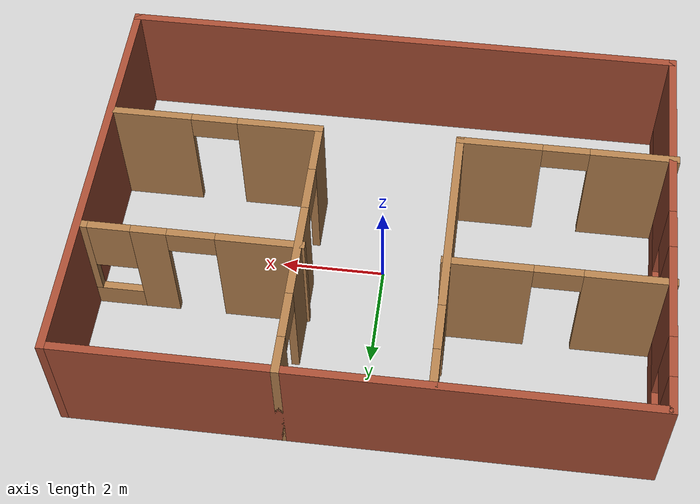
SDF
<sdf version="1.7">
 <world name="default">
  <model name="ground_plane">
   <static>1</static>
   <link name="link">
    <collision name="collision">
     <geometry><plane><normal>0 0 1</normal><size>100 100</size></plane></geometry>
     <surface>
      <contact><collide_bitmask>65535</collide_bitmask></contact>
      <friction><ode><mu>100</mu><mu2>50</mu2></ode></friction>
     </surface>
    </collision>
    <visual name="visual">
     <cast_shadows>0</cast_shadows>
     <geometry><plane><normal>0 0 1</normal><size>100 100</size></plane></geometry>
     <material>
      <script><uri>file://media/materials/scripts/gazebo.material</uri><name>Gazebo/Grey</name></script>
     </material>
    </visual>
   </link>
  </model>
  <model name="building">
   <pose>0.055018 -0.119873 0 0 -0 0</pose>
   <link name="Wall_0">
    <pose>-5.39568 -0 0 0 -0 -1.5708</pose>
    <visual name="Wall_0_Visual_0">
     <pose>-3.6378 0 1.25 0 -0 0</pose>
     <geometry><box><size>0.724404 0.15 2.5</size></box></geometry>
     <material>
      <script><uri>file://media/materials/scripts/gazebo.material</uri><name>Gazebo/Bricks</name></script>
      <ambient>1 1 1 1</ambient>
     </material>
     <meta><layer>0</layer></meta>
    </visual>
    <collision name="Wall_0_Collision_0">
     <geometry><box><size>0.724404 0.15 2.5</size></box></geometry>
     <pose>-3.6378 0 1.25 0 -0 0</pose>
    </collision>
    <visual name="Wall_0_Visual_1">
     <pose>0.362202 0 0.25 0 -0 0</pose>
     <geometry><box><size>7.2756 0.15 0.5</size></box></geometry>
     <material>
      <script><uri>file://media/materials/scripts/gazebo.material</uri><name>Gazebo/Bricks</name></script>
      <ambient>1 1 1 1</ambient>
     </material>
     <meta><layer>0</layer></meta>
    </visual>
    <collision name="Wall_0_Collision_1">
     <geometry><box><size>7.2756 0.15 0.5</size></box></geometry>
     <pose>0.362202 0 0.25 0 -0 0</pose>
    </collision>
    <visual name="Wall_0_Visual_2">
     <pose>-1.52012 0 1.5 0 -0 0</pose>
     <geometry><box><size>1.91096 0.15 2</size></box></geometry>
     <material>
      <script><uri>file://media/materials/scripts/gazebo.material</uri><name>Gazebo/Bricks</name></script>
      <ambient>1 1 1 1</ambient>
     </material>
     <meta><layer>0</layer></meta>
    </visual>
    <collision name="Wall_0_Collision_2">
     <geometry><box><size>1.91096 0.15 2</size></box></geometry>
     <pose>-1.52012 0 1.5 0 -0 0</pose>
    </collision>
    <visual name="Wall_0_Visual_3">
     <pose>2.11768 0 1.5 0 -0 0</pose>
     <geometry><box><size>3.76464 0.15 2</size></box></geometry>
     <material>
      <script><uri>file://media/materials/scripts/gazebo.material</uri><name>Gazebo/Bricks</name></script>
      <ambient>1 1 1 1</ambient>
     </material>
     <meta><layer>0</layer></meta>
    </visual>
    <collision name="Wall_0_Collision_3">
     <geometry><box><size>3.76464 0.15 2</size></box></geometry>
     <pose>2.11768 0 1.5 0 -0 0</pose>
    </collision>
    <visual name="Wall_0_Visual_4">
     <pose>-2.8756 0 1.9 0 -0 0</pose>
     <geometry><box><size>0.8 0.15 1.2</size></box></geometry>
     <material>
      <script><uri>file://media/materials/scripts/gazebo.material</uri><name>Gazebo/Bricks</name></script>
      <ambient>1 1 1 1</ambient>
     </material>
     <meta><layer>0</layer></meta>
    </visual>
    <collision name="Wall_0_Collision_4">
     <geometry><box><size>0.8 0.15 1.2</size></box></geometry>
     <pose>-2.8756 0 1.9 0 -0 0</pose>
    </collision>
    <visual name="Wall_0_Visual_5">
     <pose>-0.164637 0 1.9 0 -0 0</pose>
     <geometry><box><size>0.8 0.15 1.2</size></box></geometry>
     <material>
      <script><uri>file://media/materials/scripts/gazebo.material</uri><name>Gazebo/Bricks</name></script>
      <ambient>1 1 1 1</ambient>
     </material>
     <meta><layer>0</layer></meta>
    </visual>
    <collision name="Wall_0_Collision_5">
     <geometry><box><size>0.8 0.15 1.2</size></box></geometry>
     <pose>-0.164637 0 1.9 0 -0 0</pose>
    </collision>
   </link>
   <link name="Wall_1">
    <collision name="Wall_1_Collision">
     <geometry><box><size>11 0.15 2.5</size></box></geometry>
     <pose>0 0 1.25 0 -0 0</pose>
    </collision>
    <visual name="Wall_1_Visual">
     <pose>0 0 1.25 0 -0 0</pose>
     <geometry><box><size>11 0.15 2.5</size></box></geometry>
     <material>
      <script><uri>file://media/materials/scripts/gazebo.material</uri><name>Gazebo/Bricks</name></script>
      <ambient>1 1 1 1</ambient>
     </material>
     <meta><layer>0</layer></meta>
    </visual>
    <pose>0.029316 -3.925 0 0 -0 0</pose>
   </link>
   <link name="Wall_10">
    <pose>-3.40548 -1.45998 0 0 -0 3.14159</pose>
    <visual name="Wall_10_Visual_0">
     <pose>-1.29808 0 1.25 0 -0 0</pose>
     <geometry><box><size>1.65385 0.15 2.5</size></box></geometry>
     <material>
      <script><uri>file://media/materials/scripts/gazebo.material</uri><name>Gazebo/Wood</name></script>
      <ambient>1 1 1 1</ambient>
     </material>
     <meta><layer>0</layer></meta>
    </visual>
    <collision name="Wall_10_Collision_0">
     <geometry><box><size>1.65385 0.15 2.5</size></box></geometry>
     <pose>-1.29808 0 1.25 0 -0 0</pose>
    </collision>
    <visual name="Wall_10_Visual_1">
     <pose>1.27692 0 1.25 0 -0 0</pose>
     <geometry><box><size>1.69615 0.15 2.5</size></box></geometry>
     <material>
      <script><uri>file://media/materials/scripts/gazebo.material</uri><name>Gazebo/Wood</name></script>
      <ambient>1 1 1 1</ambient>
     </material>
     <meta><layer>0</layer></meta>
    </visual>
    <collision name="Wall_10_Collision_1">
     <geometry><box><size>1.69615 0.15 2.5</size></box></geometry>
     <pose>1.27692 0 1.25 0 -0 0</pose>
    </collision>
    <visual name="Wall_10_Visual_2">
     <pose>-0.021153 0 2.25 0 -0 0</pose>
     <geometry><box><size>0.9 0.15 0.5</size></box></geometry>
     <material>
      <script><uri>file://media/materials/scripts/gazebo.material</uri><name>Gazebo/Wood</name></script>
      <ambient>1 1 1 1</ambient>
     </material>
     <meta><layer>0</layer></meta>
    </visual>
    <collision name="Wall_10_Collision_2">
     <geometry><box><size>0.9 0.15 0.5</size></box></geometry>
     <pose>-0.021153 0 2.25 0 -0 0</pose>
    </collision>
   </link>
   <link name="Wall_12">
    <pose>3.35301 1.31898 0 0 -0 0</pose>
    <visual name="Wall_12_Visual_0">
     <pose>-1.29808 0 1.25 0 -0 0</pose>
     <geometry><box><size>1.65385 0.15 2.5</size></box></geometry>
     <material>
      <script><uri>file://media/materials/scripts/gazebo.material</uri><name>Gazebo/Wood</name></script>
      <ambient>1 1 1 1</ambient>
     </material>
     <meta><layer>0</layer></meta>
    </visual>
    <collision name="Wall_12_Collision_0">
     <geometry><box><size>1.65385 0.15 2.5</size></box></geometry>
     <pose>-1.29808 0 1.25 0 -0 0</pose>
    </collision>
    <visual name="Wall_12_Visual_1">
     <pose>0.764665 0 1.25 0 -0 0</pose>
     <geometry><box><size>0.671635 0.15 2.5</size></box></geometry>
     <material>
      <script><uri>file://media/materials/scripts/gazebo.material</uri><name>Gazebo/Wood</name></script>
      <ambient>1 1 1 1</ambient>
     </material>
     <meta><layer>0</layer></meta>
    </visual>
    <collision name="Wall_12_Collision_1">
     <geometry><box><size>0.671635 0.15 2.5</size></box></geometry>
     <pose>0.764665 0 1.25 0 -0 0</pose>
    </collision>
    <visual name="Wall_12_Visual_2">
     <pose>1.61274 0 0.25 0 -0 0</pose>
     <geometry><box><size>1.02452 0.15 0.5</size></box></geometry>
     <material>
      <script><uri>file://media/materials/scripts/gazebo.material</uri><name>Gazebo/Wood</name></script>
      <ambient>1 1 1 1</ambient>
     </material>
     <meta><layer>0</layer></meta>
    </visual>
    <collision name="Wall_12_Collision_2">
     <geometry><box><size>1.02452 0.15 0.5</size></box></geometry>
     <pose>1.61274 0 0.25 0 -0 0</pose>
    </collision>
    <visual name="Wall_12_Visual_3">
     <pose>2.01274 0 1.5 0 -0 0</pose>
     <geometry><box><size>0.224517 0.15 2</size></box></geometry>
     <material>
      <script><uri>file://media/materials/scripts/gazebo.material</uri><name>Gazebo/Wood</name></script>
      <ambient>1 1 1 1</ambient>
     </material>
     <meta><layer>0</layer></meta>
    </visual>
    <collision name="Wall_12_Collision_3">
     <geometry><box><size>0.224517 0.15 2</size></box></geometry>
     <pose>2.01274 0 1.5 0 -0 0</pose>
    </collision>
    <visual name="Wall_12_Visual_4">
     <pose>1.50048 0 1.9 0 -0 0</pose>
     <geometry><box><size>0.8 0.15 1.2</size></box></geometry>
     <material>
      <script><uri>file://media/materials/scripts/gazebo.material</uri><name>Gazebo/Wood</name></script>
      <ambient>1 1 1 1</ambient>
     </material>
     <meta><layer>0</layer></meta>
    </visual>
    <collision name="Wall_12_Collision_4">
     <geometry><box><size>0.8 0.15 1.2</size></box></geometry>
     <pose>1.50048 0 1.9 0 -0 0</pose>
    </collision>
    <visual name="Wall_12_Visual_5">
     <pose>-0.021153 0 2.25 0 -0 0</pose>
     <geometry><box><size>0.9 0.15 0.5</size></box></geometry>
     <material>
      <script><uri>file://media/materials/scripts/gazebo.material</uri><name>Gazebo/Wood</name></script>
      <ambient>1 1 1 1</ambient>
     </material>
     <meta><layer>0</layer></meta>
    </visual>
    <collision name="Wall_12_Collision_5">
     <geometry><box><size>0.9 0.15 0.5</size></box></geometry>
     <pose>-0.021153 0 2.25 0 -0 0</pose>
    </collision>
   </link>
   <link name="Wall_14">
    <pose>-3.3705 1.33647 0 0 -0 3.14159</pose>
    <visual name="Wall_14_Visual_0">
     <pose>-1.28933 0 1.25 0 -0 0</pose>
     <geometry><box><size>1.67134 0.15 2.5</size></box></geometry>
     <material>
      <script><uri>file://media/materials/scripts/gazebo.material</uri><name>Gazebo/Wood</name></script>
      <ambient>1 1 1 1</ambient>
     </material>
     <meta><layer>0</layer></meta>
    </visual>
    <collision name="Wall_14_Collision_0">
     <geometry><box><size>1.67134 0.15 2.5</size></box></geometry>
     <pose>-1.28933 0 1.25 0 -0 0</pose>
    </collision>
    <visual name="Wall_14_Visual_1">
     <pose>1.28567 0 1.25 0 -0 0</pose>
     <geometry><box><size>1.67866 0.15 2.5</size></box></geometry>
     <material>
      <script><uri>file://media/materials/scripts/gazebo.material</uri><name>Gazebo/Wood</name></script>
      <ambient>1 1 1 1</ambient>
     </material>
     <meta><layer>0</layer></meta>
    </visual>
    <collision name="Wall_14_Collision_1">
     <geometry><box><size>1.67866 0.15 2.5</size></box></geometry>
     <pose>1.28567 0 1.25 0 -0 0</pose>
    </collision>
    <visual name="Wall_14_Visual_2">
     <pose>-0.003663 0 2.25 0 -0 0</pose>
     <geometry><box><size>0.9 0.15 0.5</size></box></geometry>
     <material>
      <script><uri>file://media/materials/scripts/gazebo.material</uri><name>Gazebo/Wood</name></script>
      <ambient>1 1 1 1</ambient>
     </material>
     <meta><layer>0</layer></meta>
    </visual>
    <collision name="Wall_14_Collision_2">
     <geometry><box><size>0.9 0.15 0.5</size></box></geometry>
     <pose>-0.003663 0 2.25 0 -0 0</pose>
    </collision>
   </link>
   <link name="Wall_2">
    <collision name="Wall_2_Collision">
     <geometry><box><size>8 0.15 2.5</size></box></geometry>
     <pose>0 0 1.25 0 -0 0</pose>
    </collision>
    <visual name="Wall_2_Visual">
     <pose>0 0 1.25 0 -0 0</pose>
     <geometry><box><size>8 0.15 2.5</size></box></geometry>
     <material>
      <script><uri>file://media/materials/scripts/gazebo.material</uri><name>Gazebo/Bricks</name></script>
      <ambient>1 1 1 1</ambient>
     </material>
     <meta><layer>0</layer></meta>
    </visual>
    <pose>5.45432 -0 0 0 -0 1.5708</pose>
   </link>
   <link name="Wall_3">
    <collision name="Wall_3_Collision">
     <geometry><box><size>11 0.15 2.5</size></box></geometry>
     <pose>0 0 1.25 0 -0 0</pose>
    </collision>
    <visual name="Wall_3_Visual">
     <pose>0 0 1.25 0 -0 0</pose>
     <geometry><box><size>11 0.15 2.5</size></box></geometry>
     <material>
      <script><uri>file://media/materials/scripts/gazebo.material</uri><name>Gazebo/Bricks</name></script>
      <ambient>1 1 1 1</ambient>
     </material>
     <meta><layer>0</layer></meta>
    </visual>
    <pose>0.029316 3.925 0 0 -0 3.14159</pose>
   </link>
   <link name="Wall_6">
    <pose>1.35548 1.25 0 0 -0 -1.5708</pose>
    <visual name="Wall_6_Visual_0">
     <pose>-2.38656 0 1.25 0 -0 0</pose>
     <geometry><box><size>0.726874 0.15 2.5</size></box></geometry>
     <material>
      <script><uri>file://media/materials/scripts/gazebo.material</uri><name>Gazebo/Wood</name></script>
      <ambient>1 1 1 1</ambient>
     </material>
     <meta><layer>0</layer></meta>
    </visual>
    <collision name="Wall_6_Collision_0">
     <geometry><box><size>0.726874 0.15 2.5</size></box></geometry>
     <pose>-2.38656 0 1.25 0 -0 0</pose>
    </collision>
    <visual name="Wall_6_Visual_1">
     <pose>-0.173921 0 1.25 0 -0 0</pose>
     <geometry><box><size>1.89841 0.15 2.5</size></box></geometry>
     <material>
      <script><uri>file://media/materials/scripts/gazebo.material</uri><name>Gazebo/Wood</name></script>
      <ambient>1 1 1 1</ambient>
     </material>
     <meta><layer>0</layer></meta>
    </visual>
    <collision name="Wall_6_Collision_1">
     <geometry><box><size>1.89841 0.15 2.5</size></box></geometry>
     <pose>-0.173921 0 1.25 0 -0 0</pose>
    </collision>
    <visual name="Wall_6_Visual_2">
     <pose>2.21264 0 1.25 0 -0 0</pose>
     <geometry><box><size>1.07472 0.15 2.5</size></box></geometry>
     <material>
      <script><uri>file://media/materials/scripts/gazebo.material</uri><name>Gazebo/Wood</name></script>
      <ambient>1 1 1 1</ambient>
     </material>
     <meta><layer>0</layer></meta>
    </visual>
    <collision name="Wall_6_Collision_2">
     <geometry><box><size>1.07472 0.15 2.5</size></box></geometry>
     <pose>2.21264 0 1.25 0 -0 0</pose>
    </collision>
    <visual name="Wall_6_Visual_3">
     <pose>-1.57313 0 2.25 0 -0 0</pose>
     <geometry><box><size>0.9 0.15 0.5</size></box></geometry>
     <material>
      <script><uri>file://media/materials/scripts/gazebo.material</uri><name>Gazebo/Wood</name></script>
      <ambient>1 1 1 1</ambient>
     </material>
     <meta><layer>0</layer></meta>
    </visual>
    <collision name="Wall_6_Collision_3">
     <geometry><box><size>0.9 0.15 0.5</size></box></geometry>
     <pose>-1.57313 0 2.25 0 -0 0</pose>
    </collision>
    <visual name="Wall_6_Visual_4">
     <pose>1.22528 0 2.25 0 -0 0</pose>
     <geometry><box><size>0.9 0.15 0.5</size></box></geometry>
     <material>
      <script><uri>file://media/materials/scripts/gazebo.material</uri><name>Gazebo/Wood</name></script>
      <ambient>1 1 1 1</ambient>
     </material>
     <meta><layer>0</layer></meta>
    </visual>
    <collision name="Wall_6_Collision_4">
     <geometry><box><size>0.9 0.15 0.5</size></box></geometry>
     <pose>1.22528 0 2.25 0 -0 0</pose>
    </collision>
   </link>
   <link name="Wall_7">
    <pose>3.40548 -1.425 0 0 -0 0</pose>
    <visual name="Wall_7_Visual_0">
     <pose>-1.28933 0 1.25 0 -0 0</pose>
     <geometry><box><size>1.67134 0.15 2.5</size></box></geometry>
     <material>
      <script><uri>file://media/materials/scripts/gazebo.material</uri><name>Gazebo/Wood</name></script>
      <ambient>1 1 1 1</ambient>
     </material>
     <meta><layer>0</layer></meta>
    </visual>
    <collision name="Wall_7_Collision_0">
     <geometry><box><size>1.67134 0.15 2.5</size></box></geometry>
     <pose>-1.28933 0 1.25 0 -0 0</pose>
    </collision>
    <visual name="Wall_7_Visual_1">
     <pose>1.28567 0 1.25 0 -0 0</pose>
     <geometry><box><size>1.67866 0.15 2.5</size></box></geometry>
     <material>
      <script><uri>file://media/materials/scripts/gazebo.material</uri><name>Gazebo/Wood</name></script>
      <ambient>1 1 1 1</ambient>
     </material>
     <meta><layer>0</layer></meta>
    </visual>
    <collision name="Wall_7_Collision_1">
     <geometry><box><size>1.67866 0.15 2.5</size></box></geometry>
     <pose>1.28567 0 1.25 0 -0 0</pose>
    </collision>
    <visual name="Wall_7_Visual_2">
     <pose>-0.003663 0 2.25 0 -0 0</pose>
     <geometry><box><size>0.9 0.15 0.5</size></box></geometry>
     <material>
      <script><uri>file://media/materials/scripts/gazebo.material</uri><name>Gazebo/Wood</name></script>
      <ambient>1 1 1 1</ambient>
     </material>
     <meta><layer>0</layer></meta>
    </visual>
    <collision name="Wall_7_Collision_2">
     <geometry><box><size>0.9 0.15 0.5</size></box></geometry>
     <pose>-0.003663 0 2.25 0 -0 0</pose>
    </collision>
   </link>
   <link name="Wall_9">
    <pose>-1.35548 1.21502 0 0 -0 -1.5708</pose>
    <visual name="Wall_9_Visual_0">
     <pose>-2.36907 0 1.25 0 -0 0</pose>
     <geometry><box><size>0.761854 0.15 2.5</size></box></geometry>
     <material>
      <script><uri>file://media/materials/scripts/gazebo.material</uri><name>Gazebo/Wood</name></script>
      <ambient>1 1 1 1</ambient>
     </material>
     <meta><layer>0</layer></meta>
    </visual>
    <collision name="Wall_9_Collision_0">
     <geometry><box><size>0.761854 0.15 2.5</size></box></geometry>
     <pose>-2.36907 0 1.25 0 -0 0</pose>
    </collision>
    <visual name="Wall_9_Visual_1">
     <pose>0.830927 0 1.25 0 -0 0</pose>
     <geometry><box><size>3.83815 0.15 2.5</size></box></geometry>
     <material>
      <script><uri>file://media/materials/scripts/gazebo.material</uri><name>Gazebo/Wood</name></script>
      <ambient>1 1 1 1</ambient>
     </material>
     <meta><layer>0</layer></meta>
    </visual>
    <collision name="Wall_9_Collision_1">
     <geometry><box><size>3.83815 0.15 2.5</size></box></geometry>
     <pose>0.830927 0 1.25 0 -0 0</pose>
    </collision>
    <visual name="Wall_9_Visual_2">
     <pose>-1.53815 0 2.25 0 -0 0</pose>
     <geometry><box><size>0.9 0.15 0.5</size></box></geometry>
     <material>
      <script><uri>file://media/materials/scripts/gazebo.material</uri><name>Gazebo/Wood</name></script>
      <ambient>1 1 1 1</ambient>
     </material>
     <meta><layer>0</layer></meta>
    </visual>
    <collision name="Wall_9_Collision_2">
     <geometry><box><size>0.9 0.15 0.5</size></box></geometry>
     <pose>-1.53815 0 2.25 0 -0 0</pose>
    </collision>
   </link>
   <static>1</static>
  </model>
  <model name="bookshelf_0">
   <static>1</static>
   <link name="link">
    <inertial><mass>1</mass></inertial>
    <collision name="back">
     <pose>0 0.005 0.6 0 -0 0</pose>
     <geometry><box><size>0.9 0.01 1.2</size></box></geometry>
    </collision>
    <visual name="visual1">
     <pose>0 0.005 0.6 0 -0 0</pose>
     <geometry><box><size>0.9 0.01 1.2</size></box></geometry>
     <material>
      <script><uri>file://media/materials/scripts/gazebo.material</uri><name>Gazebo/Wood</name></script>
     </material>
    </visual>
    <collision name="left_side">
     <pose>0.45 -0.195 0.6 0 -0 0</pose>
     <geometry><box><size>0.02 0.4 1.2</size></box></geometry>
    </collision>
    <visual name="visual2">
     <pose>0.45 -0.195 0.6 0 -0 0</pose>
     <geometry><box><size>0.02 0.4 1.2</size></box></geometry>
     <material>
      <script><uri>file://media/materials/scripts/gazebo.material</uri><name>Gazebo/Wood</name></script>
     </material>
    </visual>
    <collision name="right_side">
     <pose>-0.45 -0.195 0.6 0 -0 0</pose>
     <geometry><box><size>0.02 0.4 1.2</size></box></geometry>
    </collision>
    <visual name="visual3">
     <pose>-0.45 -0.195 0.6 0 -0 0</pose>
     <geometry><box><size>0.02 0.4 1.2</size></box></geometry>
     <material>
      <script><uri>file://media/materials/scripts/gazebo.material</uri><name>Gazebo/Wood</name></script>
     </material>
    </visual>
    <collision name="bottom">
     <pose>0 -0.195 0.03 0 -0 0</pose>
     <geometry><box><size>0.88 0.4 0.06</size></box></geometry>
    </collision>
    <visual name="visual4">
     <pose>0 -0.195 0.03 0 -0 0</pose>
     <geometry><box><size>0.88 0.4 0.06</size></box></geometry>
     <material>
      <script><uri>file://media/materials/scripts/gazebo.material</uri><name>Gazebo/Wood</name></script>
     </material>
    </visual>
    <collision name="top">
     <pose>0 -0.195 1.19 0 -0 0</pose>
     <geometry><box><size>0.88 0.4 0.02</size></box></geometry>
    </collision>
    <visual name="visual5">
     <pose>0 -0.195 1.19 0 -0 0</pose>
     <geometry><box><size>0.88 0.4 0.02</size></box></geometry>
     <material>
      <script><uri>file://media/materials/scripts/gazebo.material</uri><name>Gazebo/Wood</name></script>
     </material>
    </visual>
    <collision name="low_shelf">
     <pose>0 -0.195 0.43 0 -0 0</pose>
     <geometry><box><size>0.88 0.4 0.02</size></box></geometry>
    </collision>
    <visual name="visual6">
     <pose>0 -0.195 0.43 0 -0 0</pose>
     <geometry><box><size>0.88 0.4 0.02</size></box></geometry>
     <material>
      <script><uri>file://media/materials/scripts/gazebo.material</uri><name>Gazebo/Wood</name></script>
     </material>
    </visual>
    <collision name="high_shelf">
     <pose>0 -0.195 0.8 0 -0 0</pose>
     <geometry><box><size>0.88 0.4 0.02</size></box></geometry>
    </collision>
    <visual name="visual7">
     <pose>0 -0.195 0.8 0 -0 0</pose>
     <geometry><box><size>0.88 0.4 0.02</size></box></geometry>
     <material>
      <script><uri>file://media/materials/scripts/gazebo.material</uri><name>Gazebo/Wood</name></script>
     </material>
    </visual>
   </link>
   <pose>2.25327 1.09009 0 0 -0 0</pose>
  </model>
 </world>
</sdf>
